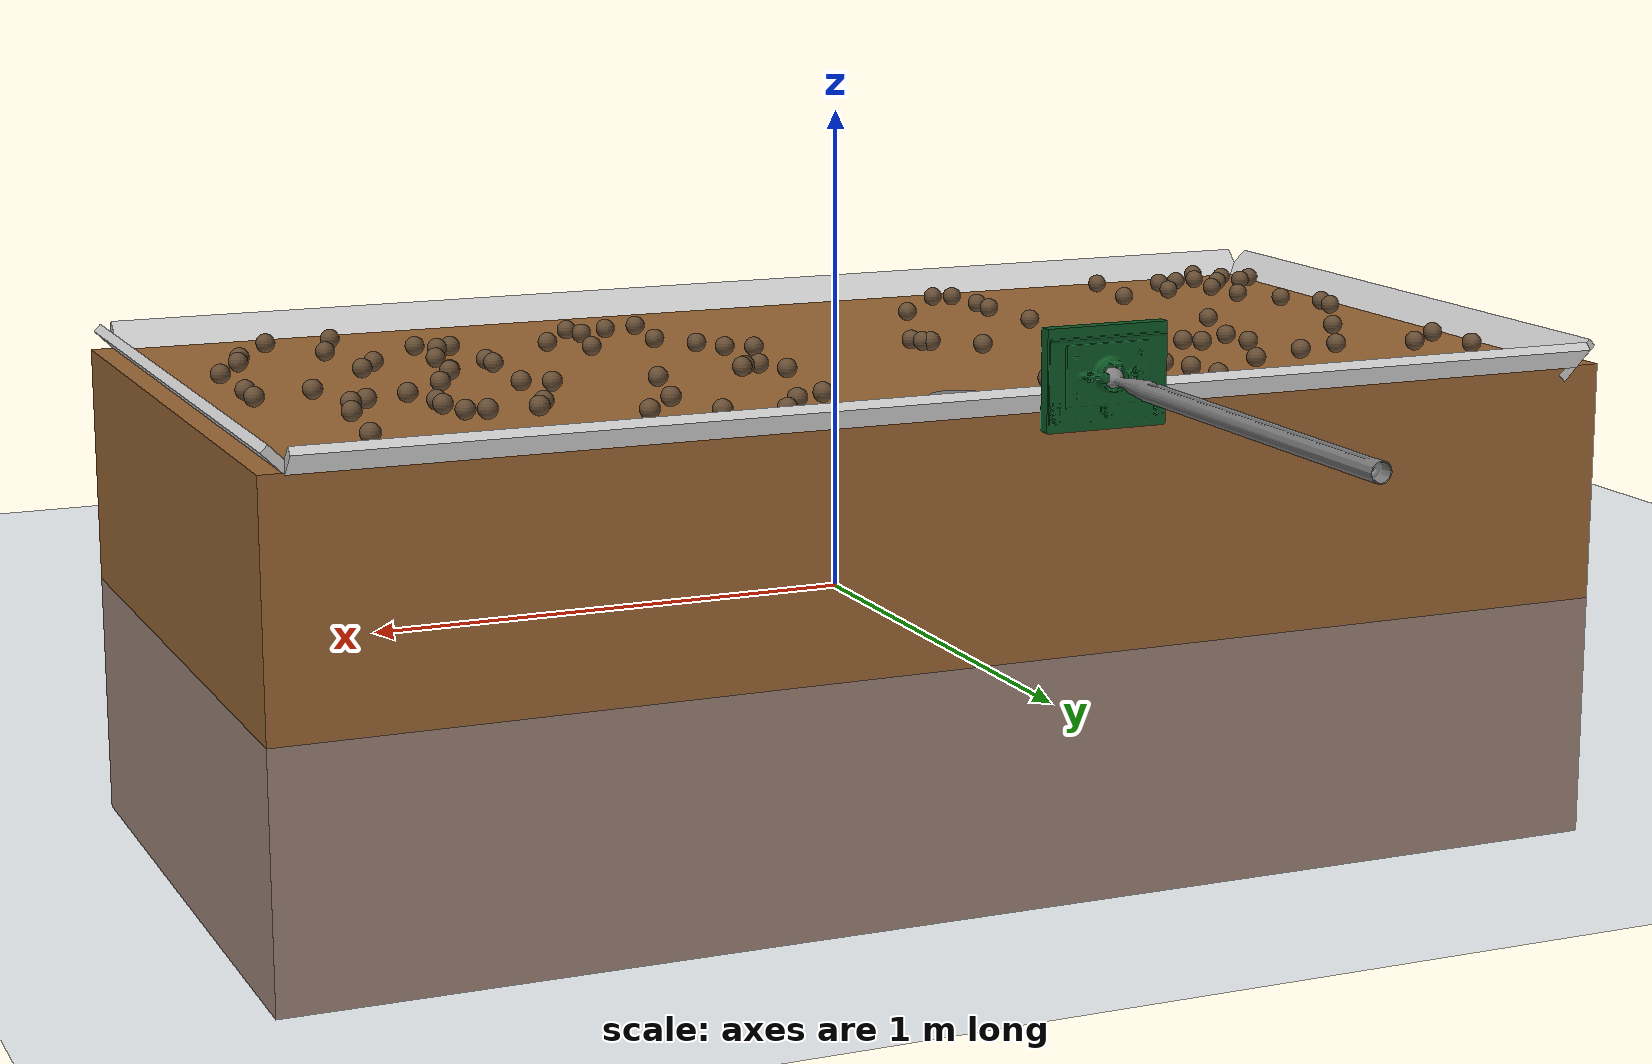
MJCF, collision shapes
<mujoco model="robot_cleaning_scene">
    <compiler angle="radian" meshdir="../assets" autolimits="true" />
    <option integrator="implicitfast" timestep="0.01" viscosity="0.01" />
    <include file="world_settings.xml"/>
    <include file="table.xml"/>
    <include file="ur5e_with_mop.xml"/>
    <include file="balls.xml"/>
</mujoco>

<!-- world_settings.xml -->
<mujoco>
  <compiler angle="radian" meshdir="assets" autolimits="true" />
  <option integrator="implicitfast" timestep="0.01" viscosity="0.01" />

  <asset>
    <texture name="skybox" type="skybox" builtin="gradient"
      rgb1="0.7 0.85 1" rgb2="0.2 0.3 0.5" width="512" height="512" />
    <texture name="ground_tex" type="2d" builtin="checker" width="512" height="512"
      rgb1="0.2 0.4 0.8" rgb2="0.9 0.9 1" mark="cross" random="0.01" />
    <material name="ground_mat" texture="ground_tex" texrepeat="4 4"
      rgba="1 1 1 1" specular="1" shininess="1" reflectance="0.5" />
  </asset>

  <visual>
    <map znear="0.01" zfar="200" fogstart="8" fogend="60" />
  </visual>

  <worldbody>
    <!-- Key light -->
    <light name="sun_key" directional="true" pos="0 0 5" dir="0 0 -1"
      diffuse="0.15 0.15 0.15" ambient="0.15 0.15 0.15" specular="0.15 0.15 0.15" castshadow="false" />
    <!-- Ground plane -->
    <geom name="ground" type="plane" size="10 10 0.1" material="ground_mat"
      solref="0.02 1.0" solimp="0.9 0.95 0.001" friction="0.9 0.1 0.05" />
  </worldbody>
</mujoco>

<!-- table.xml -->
<mujoco>
    <compiler meshdir="../assets"/>
  <asset>
    <mesh file="test.stl" scale="0.28 0.29 0.1" name="table" />
    <material name="table_material" rgba="0.6 0.4 0.2 1" />
  </asset>
  <worldbody>
    <body name="table" pos="0 0 0">
      <inertial mass="50" pos="0 0 0.05" diaginertia="10 10 5" />
      <!-- Collision geometry -->
      <geom name="table_collision" type="box" size="1.4 0.7 0.5" pos="0.0 0.0 -0.01"
        material="table_material" group="3" contype="1" conaffinity="1"
        solref="0.02 1.0" solimp="0.9 0.95 0.001" friction="0.7 0.1 0.05" />
      <!-- Visual geometry -->
      <geom name="table_visual" type="mesh" mesh="table" material="table_material" class="visual"
        pos="1.35 0.7 0" />
      <!-- Table edge wedges (collision only) -->
      <geom name="wedge_y_pos" type="box" size="1.35 0.05 0.01"
        pos="0.0 0.7 0.50" axisangle="1 0 0 0.7854"
        group="3" contype="1" conaffinity="1" friction="0.8 0.1 0.05" rgba="0.8 0.8 0.8 1" />
      <geom name="wedge_y_neg" type="box" size="1.35 0.05 0.01"
        pos="0.0 -0.7 0.50" axisangle="1 0 0 -0.7854"
        group="3" contype="1" conaffinity="1" friction="0.8 0.1 0.05" rgba="0.8 0.8 0.8 1" />
      <geom name="wedge_x_pos" type="box" size="0.05 0.7 0.01"
        pos="1.35 0.0 0.50" axisangle="0 1 0 -0.7854"
        group="3" contype="1" conaffinity="1" friction="0.8 0.1 0.05" rgba="0.8 0.8 0.8 1" />
      <geom name="wedge_x_neg" type="box" size="0.05 0.7 0.01"
        pos="-1.35 0.0 0.50" axisangle="0 1 0 0.7854"
        group="3" contype="1" conaffinity="1" friction="0.8 0.1 0.05" rgba="0.8 0.8 0.8 1" />
    </body>
  </worldbody>
</mujoco>

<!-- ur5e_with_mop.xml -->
<mujoco model="ur5e_with_mop">
  <compiler meshdir="../assets"/>
  <!-- ================= DEFAULT SETTINGS ================= -->
  <default>
    <default class="ur5e">
      <default class="visual">
        <geom type="mesh" contype="0" conaffinity="0" group="2" />
      </default>
      <default class="collision">
        <geom type="capsule" group="3" />
        <default class="eef_collision">
          <geom type="cylinder" />
        </default>
      </default>
      <joint axis="0 1 0" range="-6.28319 6.28319" />
      <default class="joint_limited">
        <joint range="-3.1415 3.1415" />
      </default>
      <default class="position">
        <position ctrlrange="-6.2831 6.2831" kp="500" kv="25" forcerange="-150 150" />
        <default class="position_limited">
          <position ctrlrange="-3.1415 3.1415" />
        </default>
        <default class="position_small">
          <position kp="500" kv="25" forcerange="-28 28" />
        </default>
      </default>
    </default>
  </default>
  <asset>
    <material name="black" rgba="0.033 0.033 0.033 1" />
    <material name="jointgray" rgba="0.278 0.278 0.278 1" />
    <material name="linkgray" rgba="0.82 0.82 0.82 1" />
    <material name="urblue" rgba="0.49 0.678 0.8 1" />
    <!-- Purple material for the mop -->
    <material name="mop_purple" rgba="0.18 0.05 0.35 1" specular="0.5" shininess="0.6" />
    <!-- Dark green material for the mop -->
    <material name="mop_dark_green" rgba="0.05 0.35 0.15 1" specular="0.4" shininess="0.5" />
    <!-- Robot meshes -->
    <mesh file="base_0.obj" />
    <mesh file="base_1.obj" />
    <mesh file="shoulder_0.obj" />
    <mesh file="shoulder_1.obj" />
    <mesh file="shoulder_2.obj" />
    <mesh file="upperarm_0.obj" />
    <mesh file="upperarm_1.obj" />
    <mesh file="upperarm_2.obj" />
    <mesh file="upperarm_3.obj" />
    <mesh file="forearm_0.obj" />
    <mesh file="forearm_1.obj" />
    <mesh file="forearm_2.obj" />
    <mesh file="forearm_3.obj" />
    <mesh file="wrist1_0.obj" />
    <mesh file="wrist1_1.obj" />
    <mesh file="wrist1_2.obj" />
    <mesh file="wrist2_0.obj" />
    <mesh file="wrist2_1.obj" />
    <mesh file="wrist2_2.obj" />
    <mesh file="wrist3.obj" />
    <!-- Mop meshes -->
    <mesh name="base_mesh" file="mop_base.obj" scale="0.002 0.002 0.002" />
    <mesh name="handle_mesh" file="mop_handle.obj" scale="0.002 0.002 0.002" />
  </asset>

  <worldbody>
    <!-- UR5e Robot mounted ON the table surface -->
    <body name="base" pos="0.0 0.6 0.5" quat="1 0 0 1" childclass="ur5e">
      <inertial mass="4" pos="0 0 0" diaginertia="0.0044 0.0044 0.0072" />
      <geom mesh="base_0" material="black" class="visual" />
      <geom mesh="base_1" material="jointgray" class="visual" />
      <geom name="base_collision" type="cylinder" size="0.06 0.02" pos="0 0 -0.01" />
      <body name="shoulder_link" pos="0 0 0.163">
        <inertial mass="3.7" pos="0 0 0" diaginertia="0.0102 0.0102 0.0066" />
        <joint name="shoulder_pan" axis="0 0 1" />
        <geom mesh="shoulder_0" material="urblue" class="visual" />
        <geom mesh="shoulder_1" material="black" class="visual" />
        <geom mesh="shoulder_2" material="jointgray" class="visual" />

        <body name="upper_arm_link" pos="0 0.138 0" quat="1 0 1 0">
          <inertial mass="8.39" pos="0 0 0.2125" diaginertia="0.133 0.133 0.015" />
          <joint name="shoulder_lift" />
          <geom mesh="upperarm_0" material="linkgray" class="visual" />
          <geom mesh="upperarm_1" material="black" class="visual" />
          <geom mesh="upperarm_2" material="jointgray" class="visual" />
          <geom mesh="upperarm_3" material="urblue" class="visual" />

          <body name="forearm_link" pos="0 -0.131 0.425">
            <inertial mass="2.27" pos="0 0 0.196" diaginertia="0.031 0.031 0.004" />
            <joint name="elbow" class="joint_limited" />
            <geom mesh="forearm_0" material="urblue" class="visual" />
            <geom mesh="forearm_1" material="linkgray" class="visual" />
            <geom mesh="forearm_2" material="black" class="visual" />
            <geom mesh="forearm_3" material="jointgray" class="visual" />

            <body name="wrist_1_link" pos="0 0 0.392" quat="1 0 1 0">
              <inertial mass="1.219" pos="0 0.127 0" diaginertia="0.0025 0.0025 0.0021" />
              <joint name="wrist_1" />
              <geom mesh="wrist1_0" material="black" class="visual" />
              <geom mesh="wrist1_1" material="urblue" class="visual" />
              <geom mesh="wrist1_2" material="jointgray" class="visual" />

              <body name="wrist_2_link" pos="0 0.127 0">
                <inertial mass="1.219" pos="0 0 0.1" diaginertia="0.0025 0.0025 0.0021" />
                <joint name="wrist_2" axis="0 0 1" />
                <geom mesh="wrist2_0" material="black" class="visual" />
                <geom mesh="wrist2_1" material="urblue" class="visual" />
                <geom mesh="wrist2_2" material="jointgray" class="visual" />

                <body name="wrist_3_link" pos="0 0 0.1">
                  <inertial mass="0.188" pos="0 0.077 0" diaginertia="0.00013 0.0001 0.0001" />
                  <joint name="wrist_3" />
                  <geom mesh="wrist3" material="linkgray" class="visual" />

                  <!-- Mop tool attachment -->
                  <body name="mop_mount" pos="0 0.08 0" quat="1 0 0 1">

                    <body name="mop_tool" pos="0 -0.6 0">
                      <inertial mass="0.5" pos="0 0 0" diaginertia="0.01 0.01 0.01" />
                      <geom type="mesh" mesh="handle_mesh" density="500" friction="0.8 0.1 0.1" />

                      <body name="mop_head">
                        <joint name="mop_socket" type="ball" damping="0.5" limited="false" />
                        <site name="ee_site" pos="0 -0.02 0.0" size="0.01" rgba="1 0 0 1" group="4" />
                        <inertial mass="0.2" pos="0 -0.05 -0.1" diaginertia="0.005 0.005 0.005" />
                        <geom type="mesh" mesh="base_mesh" density="500" friction="0.8 0.1 0.1"
                          pos="0 -0.05 -0.1" material="mop_dark_green" />
                      </body>  <!--
                      mop_head -->
                    </body>    <!--
                    mop_tool -->
                  </body>      <!--
                  mop_mount -->
                </body>        <!--
                wrist_3_link -->
              </body>          <!--
              wrist_2_link -->
            </body>            <!--
            wrist_1_link -->
          </body>              <!--
          forearm_link -->
        </body>                <!--
        upper_arm_link -->
      </body>                  <!--
      shoulder_link -->
    </body>                   <!--
    base -->
  </worldbody>
  <actuator>
    <position class="position" name="shoulder_pan_act" joint="shoulder_pan" />
    <position class="position" name="shoulder_lift_act" joint="shoulder_lift" />
    <position class="position_limited" name="elbow_act" joint="elbow" />
    <position class="position_small" name="wrist_1_act" joint="wrist_1" />
    <position class="position_small" name="wrist_2_act" joint="wrist_2" />
    <position class="position_small" name="wrist_3_act" joint="wrist_3" />
  </actuator>
</mujoco>

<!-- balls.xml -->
<mujoco>
   <asset>
      <material name="dust_material" rgba="0.4 0.3 0.2 0.8" />
  </asset>
  <worldbody>
    <body name="ball_1" pos="-0.5133 -0.52 0.51">
      <freejoint/>
      <inertial mass="0.53" diaginertia="8.48e-05 8.48e-05 8.48e-05" pos="0 0 0"/>
      <geom type="sphere" size="0.02" material="dust_material"/>
    </body>
    <body name="ball_2" pos="0.7296 -0.3315 0.51">
      <freejoint/>
      <inertial mass="0.53" diaginertia="8.48e-05 8.48e-05 8.48e-05" pos="0 0 0"/>
      <geom type="sphere" size="0.02" material="dust_material"/>
    </body>
    <body name="ball_3" pos="-0.8236 0.1822 0.51">
      <freejoint/>
      <inertial mass="0.53" diaginertia="8.480000000000001e-05 8.480000000000001e-05 8.480000000000001e-05" pos="0 0 0"/>
      <geom type="sphere" size="0.02" material="dust_material"/>
   </body>
   <body name="ball_4" pos="0.4596 -0.2143 0.51">
      <freejoint/>
      <inertial mass="0.53" diaginertia="8.480000000000001e-05 8.480000000000001e-05 8.480000000000001e-05" pos="0 0 0"/>
      <geom type="sphere" size="0.02" material="dust_material"/>
   </body>
   <body name="ball_5" pos="0.152 -0.0756 0.51">
      <freejoint/>
      <inertial mass="0.53" diaginertia="8.480000000000001e-05 8.480000000000001e-05 8.480000000000001e-05" pos="0 0 0"/>
      <geom type="sphere" size="0.02" material="dust_material"/>
   </body>
   <body name="ball_6" pos="0.2438 -0.1683 0.51">
      <freejoint/>
      <inertial mass="0.53" diaginertia="8.480000000000001e-05 8.480000000000001e-05 8.480000000000001e-05" pos="0 0 0"/>
      <geom type="sphere" size="0.02" material="dust_material"/>
   </body>
   <body name="ball_7" pos="0.2067 -0.102 0.51">
      <freejoint/>
      <inertial mass="0.53" diaginertia="8.480000000000001e-05 8.480000000000001e-05 8.480000000000001e-05" pos="0 0 0"/>
      <geom type="sphere" size="0.02" material="dust_material"/>
   </body>
   <body name="ball_8" pos="-0.5191 -0.3404 0.51">
      <freejoint/>
      <inertial mass="0.53" diaginertia="8.480000000000001e-05 8.480000000000001e-05 8.480000000000001e-05" pos="0 0 0"/>
      <geom type="sphere" size="0.02" material="dust_material"/>
   </body>
   <body name="ball_9" pos="0.8695 0.056 0.51">
      <freejoint/>
      <inertial mass="0.53" diaginertia="8.480000000000001e-05 8.480000000000001e-05 8.480000000000001e-05" pos="0 0 0"/>
      <geom type="sphere" size="0.02" material="dust_material"/>
   </body>
   <body name="ball_10" pos="-0.8261 0.2712 0.51">
      <freejoint/>
      <inertial mass="0.53" diaginertia="8.480000000000001e-05 8.480000000000001e-05 8.480000000000001e-05" pos="0 0 0"/>
      <geom type="sphere" size="0.02" material="dust_material"/>
   </body>
   <body name="ball_11" pos="0.4689 0.5483 0.51">
      <freejoint/>
      <inertial mass="0.53" diaginertia="8.480000000000001e-05 8.480000000000001e-05 8.480000000000001e-05" pos="0 0 0"/>
      <geom type="sphere" size="0.02" material="dust_material"/>
   </body>
   <body name="ball_12" pos="-1.2387 -0.4799 0.51">
      <freejoint/>
      <inertial mass="0.53" diaginertia="8.480000000000001e-05 8.480000000000001e-05 8.480000000000001e-05" pos="0 0 0"/>
      <geom type="sphere" size="0.02" material="dust_material"/>
   </body>
   <body name="ball_13" pos="0.813 -0.0625 0.51">
      <freejoint/>
      <inertial mass="0.53" diaginertia="8.480000000000001e-05 8.480000000000001e-05 8.480000000000001e-05" pos="0 0 0"/>
      <geom type="sphere" size="0.02" material="dust_material"/>
   </body>
   <body name="ball_14" pos="0.7222 0.1131 0.51">
      <freejoint/>
      <inertial mass="0.53" diaginertia="8.480000000000001e-05 8.480000000000001e-05 8.480000000000001e-05" pos="0 0 0"/>
      <geom type="sphere" size="0.02" material="dust_material"/>
   </body>
   <body name="ball_15" pos="0.816 -0.0556 0.51">
      <freejoint/>
      <inertial mass="0.53" diaginertia="8.480000000000001e-05 8.480000000000001e-05 8.480000000000001e-05" pos="0 0 0"/>
      <geom type="sphere" size="0.02" material="dust_material"/>
   </body>
   <body name="ball_16" pos="-0.3298 -0.362 0.51">
      <freejoint/>
      <inertial mass="0.53" diaginertia="8.480000000000001e-05 8.480000000000001e-05 8.480000000000001e-05" pos="0 0 0"/>
      <geom type="sphere" size="0.02" material="dust_material"/>
   </body>
   <body name="ball_17" pos="-0.1847 -0.025 0.51">
      <freejoint/>
      <inertial mass="0.53" diaginertia="8.480000000000001e-05 8.480000000000001e-05 8.480000000000001e-05" pos="0 0 0"/>
      <geom type="sphere" size="0.02" material="dust_material"/>
   </body>
   <body name="ball_18" pos="0.9268 -0.2158 0.51">
      <freejoint/>
      <inertial mass="0.53" diaginertia="8.480000000000001e-05 8.480000000000001e-05 8.480000000000001e-05" pos="0 0 0"/>
      <geom type="sphere" size="0.02" material="dust_material"/>
   </body>
   <body name="ball_19" pos="-1.2776 -0.5062 0.51">
      <freejoint/>
      <inertial mass="0.53" diaginertia="8.480000000000001e-05 8.480000000000001e-05 8.480000000000001e-05" pos="0 0 0"/>
      <geom type="sphere" size="0.02" material="dust_material"/>
   </body>
   <body name="ball_20" pos="-0.7388 0.4535 0.51">
      <freejoint/>
      <inertial mass="0.53" diaginertia="8.480000000000001e-05 8.480000000000001e-05 8.480000000000001e-05" pos="0 0 0"/>
      <geom type="sphere" size="0.02" material="dust_material"/>
   </body>
   <body name="ball_21" pos="0.7086 -0.1051 0.51">
      <freejoint/>
      <inertial mass="0.53" diaginertia="8.480000000000001e-05 8.480000000000001e-05 8.480000000000001e-05" pos="0 0 0"/>
      <geom type="sphere" size="0.02" material="dust_material"/>
   </body>
   <body name="ball_22" pos="0.7723 0.375 0.51">
      <freejoint/>
      <inertial mass="0.53" diaginertia="8.480000000000001e-05 8.480000000000001e-05 8.480000000000001e-05" pos="0 0 0"/>
      <geom type="sphere" size="0.02" material="dust_material"/>
   </body>
   <body name="ball_23" pos="-0.2397 0.4991 0.51">
      <freejoint/>
      <inertial mass="0.53" diaginertia="8.480000000000001e-05 8.480000000000001e-05 8.480000000000001e-05" pos="0 0 0"/>
      <geom type="sphere" size="0.02" material="dust_material"/>
   </body>
   <body name="ball_24" pos="0.9622 0.1456 0.51">
      <freejoint/>
      <inertial mass="0.53" diaginertia="8.480000000000001e-05 8.480000000000001e-05 8.480000000000001e-05" pos="0 0 0"/>
      <geom type="sphere" size="0.02" material="dust_material"/>
   </body>
   <body name="ball_25" pos="-1.1435 -0.5267 0.51">
      <freejoint/>
      <inertial mass="0.53" diaginertia="8.480000000000001e-05 8.480000000000001e-05 8.480000000000001e-05" pos="0 0 0"/>
      <geom type="sphere" size="0.02" material="dust_material"/>
   </body>
   <body name="ball_26" pos="1.1215 0.0387 0.51">
      <freejoint/>
      <inertial mass="0.53" diaginertia="8.480000000000001e-05 8.480000000000001e-05 8.480000000000001e-05" pos="0 0 0"/>
      <geom type="sphere" size="0.02" material="dust_material"/>
   </body>
   <body name="ball_27" pos="-0.6188 0.2355 0.51">
      <freejoint/>
      <inertial mass="0.53" diaginertia="8.480000000000001e-05 8.480000000000001e-05 8.480000000000001e-05" pos="0 0 0"/>
      <geom type="sphere" size="0.02" material="dust_material"/>
   </body>
   <body name="ball_28" pos="1.2455 -0.198 0.51">
      <freejoint/>
      <inertial mass="0.53" diaginertia="8.480000000000001e-05 8.480000000000001e-05 8.480000000000001e-05" pos="0 0 0"/>
      <geom type="sphere" size="0.02" material="dust_material"/>
   </body>
   <body name="ball_29" pos="0.6668 0.1406 0.51">
      <freejoint/>
      <inertial mass="0.53" diaginertia="8.480000000000001e-05 8.480000000000001e-05 8.480000000000001e-05" pos="0 0 0"/>
      <geom type="sphere" size="0.02" material="dust_material"/>
   </body>
   <body name="ball_30" pos="0.7091 -0.1517 0.51">
      <freejoint/>
      <inertial mass="0.53" diaginertia="8.480000000000001e-05 8.480000000000001e-05 8.480000000000001e-05" pos="0 0 0"/>
      <geom type="sphere" size="0.02" material="dust_material"/>
   </body>
   <body name="ball_31" pos="1.165 -0.3689 0.51">
      <freejoint/>
      <inertial mass="0.53" diaginertia="8.480000000000001e-05 8.480000000000001e-05 8.480000000000001e-05" pos="0 0 0"/>
      <geom type="sphere" size="0.02" material="dust_material"/>
   </body>
   <body name="ball_32" pos="-1.1219 -0.4064 0.51">
      <freejoint/>
      <inertial mass="0.53" diaginertia="8.480000000000001e-05 8.480000000000001e-05 8.480000000000001e-05" pos="0 0 0"/>
      <geom type="sphere" size="0.02" material="dust_material"/>
   </body>
   <body name="ball_33" pos="0.226 0.4603 0.51">
      <freejoint/>
      <inertial mass="0.53" diaginertia="8.480000000000001e-05 8.480000000000001e-05 8.480000000000001e-05" pos="0 0 0"/>
      <geom type="sphere" size="0.02" material="dust_material"/>
   </body>
   <body name="ball_34" pos="0.935 -0.5185 0.51">
      <freejoint/>
      <inertial mass="0.53" diaginertia="8.480000000000001e-05 8.480000000000001e-05 8.480000000000001e-05" pos="0 0 0"/>
      <geom type="sphere" size="0.02" material="dust_material"/>
   </body>
   <body name="ball_35" pos="0.7971 -0.3613 0.51">
      <freejoint/>
      <inertial mass="0.53" diaginertia="8.480000000000001e-05 8.480000000000001e-05 8.480000000000001e-05" pos="0 0 0"/>
      <geom type="sphere" size="0.02" material="dust_material"/>
   </body>
   <body name="ball_36" pos="0.1872 0.188 0.51">
      <freejoint/>
      <inertial mass="0.53" diaginertia="8.480000000000001e-05 8.480000000000001e-05 8.480000000000001e-05" pos="0 0 0"/>
      <geom type="sphere" size="0.02" material="dust_material"/>
   </body>
   <body name="ball_37" pos="-0.8746 0.4021 0.51">
      <freejoint/>
      <inertial mass="0.53" diaginertia="8.480000000000001e-05 8.480000000000001e-05 8.480000000000001e-05" pos="0 0 0"/>
      <geom type="sphere" size="0.02" material="dust_material"/>
   </body>
   <body name="ball_38" pos="0.7982 -0.2086 0.51">
      <freejoint/>
      <inertial mass="0.53" diaginertia="8.480000000000001e-05 8.480000000000001e-05 8.480000000000001e-05" pos="0 0 0"/>
      <geom type="sphere" size="0.02" material="dust_material"/>
   </body>
   <body name="ball_39" pos="-0.5657 0.4921 0.51">
      <freejoint/>
      <inertial mass="0.53" diaginertia="8.480000000000001e-05 8.480000000000001e-05 8.480000000000001e-05" pos="0 0 0"/>
      <geom type="sphere" size="0.02" material="dust_material"/>
   </body>
   <body name="ball_40" pos="-1.1917 -0.2142 0.51">
      <freejoint/>
      <inertial mass="0.53" diaginertia="8.480000000000001e-05 8.480000000000001e-05 8.480000000000001e-05" pos="0 0 0"/>
      <geom type="sphere" size="0.02" material="dust_material"/>
   </body>
   <body name="ball_41" pos="-0.8987 -0.0272 0.51">
      <freejoint/>
      <inertial mass="0.53" diaginertia="8.480000000000001e-05 8.480000000000001e-05 8.480000000000001e-05" pos="0 0 0"/>
      <geom type="sphere" size="0.02" material="dust_material"/>
   </body>
   <body name="ball_42" pos="-1.2496 -0.1352 0.51">
      <freejoint/>
      <inertial mass="0.53" diaginertia="8.480000000000001e-05 8.480000000000001e-05 8.480000000000001e-05" pos="0 0 0"/>
      <geom type="sphere" size="0.02" material="dust_material"/>
   </body>
   <body name="ball_43" pos="0.352 0.5842 0.51">
      <freejoint/>
      <inertial mass="0.53" diaginertia="8.480000000000001e-05 8.480000000000001e-05 8.480000000000001e-05" pos="0 0 0"/>
      <geom type="sphere" size="0.02" material="dust_material"/>
   </body>
   <body name="ball_44" pos="1.1809 -0.315 0.51">
      <freejoint/>
      <inertial mass="0.53" diaginertia="8.480000000000001e-05 8.480000000000001e-05 8.480000000000001e-05" pos="0 0 0"/>
      <geom type="sphere" size="0.02" material="dust_material"/>
   </body>
   <body name="ball_45" pos="0.9336 0.2428 0.51">
      <freejoint/>
      <inertial mass="0.53" diaginertia="8.480000000000001e-05 8.480000000000001e-05 8.480000000000001e-05" pos="0 0 0"/>
      <geom type="sphere" size="0.02" material="dust_material"/>
   </body>
   <body name="ball_46" pos="-1.1779 -0.4799 0.51">
      <freejoint/>
      <inertial mass="0.53" diaginertia="8.480000000000001e-05 8.480000000000001e-05 8.480000000000001e-05" pos="0 0 0"/>
      <geom type="sphere" size="0.02" material="dust_material"/>
   </body>
   <body name="ball_47" pos="0.9692 -0.1498 0.51">
      <freejoint/>
      <inertial mass="0.53" diaginertia="8.480000000000001e-05 8.480000000000001e-05 8.480000000000001e-05" pos="0 0 0"/>
      <geom type="sphere" size="0.02" material="dust_material"/>
   </body>
   <body name="ball_48" pos="-0.8722 -0.3656 0.51">
      <freejoint/>
      <inertial mass="0.53" diaginertia="8.480000000000001e-05 8.480000000000001e-05 8.480000000000001e-05" pos="0 0 0"/>
      <geom type="sphere" size="0.02" material="dust_material"/>
   </body>
   <body name="ball_49" pos="-1.1338 -0.3069 0.51">
      <freejoint/>
      <inertial mass="0.53" diaginertia="8.480000000000001e-05 8.480000000000001e-05 8.480000000000001e-05" pos="0 0 0"/>
      <geom type="sphere" size="0.02" material="dust_material"/>
   </body>
   <body name="ball_50" pos="0.7495 0.332 0.51">
      <freejoint/>
      <inertial mass="0.53" diaginertia="8.480000000000001e-05 8.480000000000001e-05 8.480000000000001e-05" pos="0 0 0"/>
      <geom type="sphere" size="0.02" material="dust_material"/>
   </body>
   <body name="ball_51" pos="-1.2433 0.4762 0.51">
      <freejoint/>
      <inertial mass="0.53" diaginertia="8.480000000000001e-05 8.480000000000001e-05 8.480000000000001e-05" pos="0 0 0"/>
      <geom type="sphere" size="0.02" material="dust_material"/>
   </body>
   <body name="ball_52" pos="0.8728 0.37 0.51">
      <freejoint/>
      <inertial mass="0.53" diaginertia="8.480000000000001e-05 8.480000000000001e-05 8.480000000000001e-05" pos="0 0 0"/>
      <geom type="sphere" size="0.02" material="dust_material"/>
   </body>
   <body name="ball_53" pos="1.1139 0.2892 0.51">
      <freejoint/>
      <inertial mass="0.53" diaginertia="8.480000000000001e-05 8.480000000000001e-05 8.480000000000001e-05" pos="0 0 0"/>
      <geom type="sphere" size="0.02" material="dust_material"/>
   </body>
   <body name="ball_54" pos="-0.299 0.0836 0.51">
      <freejoint/>
      <inertial mass="0.53" diaginertia="8.480000000000001e-05 8.480000000000001e-05 8.480000000000001e-05" pos="0 0 0"/>
      <geom type="sphere" size="0.02" material="dust_material"/>
   </body>
   <body name="ball_55" pos="0.5281 -0.2972 0.51">
      <freejoint/>
      <inertial mass="0.53" diaginertia="8.480000000000001e-05 8.480000000000001e-05 8.480000000000001e-05" pos="0 0 0"/>
      <geom type="sphere" size="0.02" material="dust_material"/>
   </body>
   <body name="ball_56" pos="-1.2423 0.3297 0.51">
      <freejoint/>
      <inertial mass="0.53" diaginertia="8.480000000000001e-05 8.480000000000001e-05 8.480000000000001e-05" pos="0 0 0"/>
      <geom type="sphere" size="0.02" material="dust_material"/>
   </body>
   <body name="ball_57" pos="-1.099 0.161 0.51">
      <freejoint/>
      <inertial mass="0.53" diaginertia="8.480000000000001e-05 8.480000000000001e-05 8.480000000000001e-05" pos="0 0 0"/>
      <geom type="sphere" size="0.02" material="dust_material"/>
   </body>
   <body name="ball_58" pos="0.2537 0.1255 0.51">
      <freejoint/>
      <inertial mass="0.53" diaginertia="8.480000000000001e-05 8.480000000000001e-05 8.480000000000001e-05" pos="0 0 0"/>
      <geom type="sphere" size="0.02" material="dust_material"/>
   </body>
   <body name="ball_59" pos="0.2192 0.1168 0.51">
      <freejoint/>
      <inertial mass="0.53" diaginertia="8.480000000000001e-05 8.480000000000001e-05 8.480000000000001e-05" pos="0 0 0"/>
      <geom type="sphere" size="0.02" material="dust_material"/>
   </body>
   <body name="ball_60" pos="-1.0115 -0.4116 0.51">
      <freejoint/>
      <inertial mass="0.53" diaginertia="8.480000000000001e-05 8.480000000000001e-05 8.480000000000001e-05" pos="0 0 0"/>
      <geom type="sphere" size="0.02" material="dust_material"/>
   </body>
   <body name="ball_61" pos="1.2454 0.0717 0.51">
      <freejoint/>
      <inertial mass="0.53" diaginertia="8.480000000000001e-05 8.480000000000001e-05 8.480000000000001e-05" pos="0 0 0"/>
      <geom type="sphere" size="0.02" material="dust_material"/>
   </body>
   <body name="ball_62" pos="-0.9043 -0.5586 0.51">
      <freejoint/>
      <inertial mass="0.53" diaginertia="8.480000000000001e-05 8.480000000000001e-05 8.480000000000001e-05" pos="0 0 0"/>
      <geom type="sphere" size="0.02" material="dust_material"/>
   </body>
   <body name="ball_63" pos="-0.5318 -0.1629 0.51">
      <freejoint/>
      <inertial mass="0.53" diaginertia="8.480000000000001e-05 8.480000000000001e-05 8.480000000000001e-05" pos="0 0 0"/>
      <geom type="sphere" size="0.02" material="dust_material"/>
   </body>
   <body name="ball_64" pos="-1.146 0.4098 0.51">
      <freejoint/>
      <inertial mass="0.53" diaginertia="8.480000000000001e-05 8.480000000000001e-05 8.480000000000001e-05" pos="0 0 0"/>
      <geom type="sphere" size="0.02" material="dust_material"/>
   </body>
   <body name="ball_65" pos="0.3067 -0.2507 0.51">
      <freejoint/>
      <inertial mass="0.53" diaginertia="8.480000000000001e-05 8.480000000000001e-05 8.480000000000001e-05" pos="0 0 0"/>
      <geom type="sphere" size="0.02" material="dust_material"/>
   </body>
   <body name="ball_66" pos="0.4401 -0.4311 0.51">
      <freejoint/>
      <inertial mass="0.53" diaginertia="8.480000000000001e-05 8.480000000000001e-05 8.480000000000001e-05" pos="0 0 0"/>
      <geom type="sphere" size="0.02" material="dust_material"/>
   </body>
   <body name="ball_67" pos="1.141 0.5105 0.51">
      <freejoint/>
      <inertial mass="0.53" diaginertia="8.480000000000001e-05 8.480000000000001e-05 8.480000000000001e-05" pos="0 0 0"/>
      <geom type="sphere" size="0.02" material="dust_material"/>
   </body>
   <body name="ball_68" pos="-1.0905 -0.5193 0.51">
      <freejoint/>
      <inertial mass="0.53" diaginertia="8.480000000000001e-05 8.480000000000001e-05 8.480000000000001e-05" pos="0 0 0"/>
      <geom type="sphere" size="0.02" material="dust_material"/>
   </body>
   <body name="ball_69" pos="0.9853 -0.3705 0.51">
      <freejoint/>
      <inertial mass="0.53" diaginertia="8.480000000000001e-05 8.480000000000001e-05 8.480000000000001e-05" pos="0 0 0"/>
      <geom type="sphere" size="0.02" material="dust_material"/>
   </body>
   <body name="ball_70" pos="-0.5785 0.58 0.51">
      <freejoint/>
      <inertial mass="0.53" diaginertia="8.480000000000001e-05 8.480000000000001e-05 8.480000000000001e-05" pos="0 0 0"/>
      <geom type="sphere" size="0.02" material="dust_material"/>
   </body>
   <body name="ball_71" pos="0.9347 0.2853 0.51">
      <freejoint/>
      <inertial mass="0.53" diaginertia="8.480000000000001e-05 8.480000000000001e-05 8.480000000000001e-05" pos="0 0 0"/>
      <geom type="sphere" size="0.02" material="dust_material"/>
   </body>
   <body name="ball_72" pos="-0.5226 -0.4091 0.51">
      <freejoint/>
      <inertial mass="0.53" diaginertia="8.480000000000001e-05 8.480000000000001e-05 8.480000000000001e-05" pos="0 0 0"/>
      <geom type="sphere" size="0.02" material="dust_material"/>
   </body>
   <body name="ball_73" pos="-0.5383 0.4284 0.51">
      <freejoint/>
      <inertial mass="0.53" diaginertia="8.480000000000001e-05 8.480000000000001e-05 8.480000000000001e-05" pos="0 0 0"/>
      <geom type="sphere" size="0.02" material="dust_material"/>
   </body>
   <body name="ball_74" pos="-1.0404 -0.5099 0.51">
      <freejoint/>
      <inertial mass="0.53" diaginertia="8.480000000000001e-05 8.480000000000001e-05 8.480000000000001e-05" pos="0 0 0"/>
      <geom type="sphere" size="0.02" material="dust_material"/>
   </body>
   <body name="ball_75" pos="-0.5638 0.1599 0.51">
      <freejoint/>
      <inertial mass="0.53" diaginertia="8.480000000000001e-05 8.480000000000001e-05 8.480000000000001e-05" pos="0 0 0"/>
      <geom type="sphere" size="0.02" material="dust_material"/>
   </body>
   <body name="ball_76" pos="1.0896 0.1973 0.51">
      <freejoint/>
      <inertial mass="0.53" diaginertia="8.480000000000001e-05 8.480000000000001e-05 8.480000000000001e-05" pos="0 0 0"/>
      <geom type="sphere" size="0.02" material="dust_material"/>
   </body>
   <body name="ball_77" pos="0.4583 0.1749 0.51">
      <freejoint/>
      <inertial mass="0.53" diaginertia="8.480000000000001e-05 8.480000000000001e-05 8.480000000000001e-05" pos="0 0 0"/>
      <geom type="sphere" size="0.02" material="dust_material"/>
   </body>
   <body name="ball_78" pos="0.761 -0.3208 0.51">
      <freejoint/>
      <inertial mass="0.53" diaginertia="8.480000000000001e-05 8.480000000000001e-05 8.480000000000001e-05" pos="0 0 0"/>
      <geom type="sphere" size="0.02" material="dust_material"/>
   </body>
   <body name="ball_79" pos="1.0526 0.1739 0.51">
      <freejoint/>
      <inertial mass="0.53" diaginertia="8.480000000000001e-05 8.480000000000001e-05 8.480000000000001e-05" pos="0 0 0"/>
      <geom type="sphere" size="0.02" material="dust_material"/>
   </body>
   <body name="ball_80" pos="1.2437 -0.0054 0.51">
      <freejoint/>
      <inertial mass="0.53" diaginertia="8.480000000000001e-05 8.480000000000001e-05 8.480000000000001e-05" pos="0 0 0"/>
      <geom type="sphere" size="0.02" material="dust_material"/>
   </body>
   <body name="ball_81" pos="0.511 0.3855 0.51">
      <freejoint/>
      <inertial mass="0.53" diaginertia="8.480000000000001e-05 8.480000000000001e-05 8.480000000000001e-05" pos="0 0 0"/>
      <geom type="sphere" size="0.02" material="dust_material"/>
   </body>
   <body name="ball_82" pos="-0.736 0.2346 0.51">
      <freejoint/>
      <inertial mass="0.53" diaginertia="8.480000000000001e-05 8.480000000000001e-05 8.480000000000001e-05" pos="0 0 0"/>
      <geom type="sphere" size="0.02" material="dust_material"/>
   </body>
   <body name="ball_83" pos="-1.2373 -0.0765 0.51">
      <freejoint/>
      <inertial mass="0.53" diaginertia="8.480000000000001e-05 8.480000000000001e-05 8.480000000000001e-05" pos="0 0 0"/>
      <geom type="sphere" size="0.02" material="dust_material"/>
   </body>
   <body name="ball_84" pos="0.2949 0.4965 0.51">
      <freejoint/>
      <inertial mass="0.53" diaginertia="8.480000000000001e-05 8.480000000000001e-05 8.480000000000001e-05" pos="0 0 0"/>
      <geom type="sphere" size="0.02" material="dust_material"/>
   </body>
   <body name="ball_85" pos="-0.3211 0.4232 0.51">
      <freejoint/>
      <inertial mass="0.53" diaginertia="8.480000000000001e-05 8.480000000000001e-05 8.480000000000001e-05" pos="0 0 0"/>
      <geom type="sphere" size="0.02" material="dust_material"/>
   </body>
   <body name="ball_86" pos="-1.2201 -0.5353 0.51">
      <freejoint/>
      <inertial mass="0.53" diaginertia="8.480000000000001e-05 8.480000000000001e-05 8.480000000000001e-05" pos="0 0 0"/>
      <geom type="sphere" size="0.02" material="dust_material"/>
   </body>
   <body name="ball_87" pos="0.2634 0.1362 0.51">
      <freejoint/>
      <inertial mass="0.53" diaginertia="8.480000000000001e-05 8.480000000000001e-05 8.480000000000001e-05" pos="0 0 0"/>
      <geom type="sphere" size="0.02" material="dust_material"/>
   </body>
   <body name="ball_88" pos="-0.2807 0.4685 0.51">
      <freejoint/>
      <inertial mass="0.53" diaginertia="8.480000000000001e-05 8.480000000000001e-05 8.480000000000001e-05" pos="0 0 0"/>
      <geom type="sphere" size="0.02" material="dust_material"/>
   </body>
   <body name="ball_89" pos="0.2857 -0.4254 0.51">
      <freejoint/>
      <inertial mass="0.53" diaginertia="8.480000000000001e-05 8.480000000000001e-05 8.480000000000001e-05" pos="0 0 0"/>
      <geom type="sphere" size="0.02" material="dust_material"/>
   </body>
   <body name="ball_90" pos="1.0732 -0.5175 0.51">
      <freejoint/>
      <inertial mass="0.53" diaginertia="8.480000000000001e-05 8.480000000000001e-05 8.480000000000001e-05" pos="0 0 0"/>
      <geom type="sphere" size="0.02" material="dust_material"/>
   </body>
   <body name="ball_91" pos="0.5948 0.4944 0.51">
      <freejoint/>
      <inertial mass="0.53" diaginertia="8.480000000000001e-05 8.480000000000001e-05 8.480000000000001e-05" pos="0 0 0"/>
      <geom type="sphere" size="0.02" material="dust_material"/>
   </body>
   <body name="ball_92" pos="-0.7053 0.2079 0.51">
      <freejoint/>
      <inertial mass="0.53" diaginertia="8.480000000000001e-05 8.480000000000001e-05 8.480000000000001e-05" pos="0 0 0"/>
      <geom type="sphere" size="0.02" material="dust_material"/>
   </body>
   <body name="ball_93" pos="-0.4716 -0.5335 0.51">
      <freejoint/>
      <inertial mass="0.53" diaginertia="8.480000000000001e-05 8.480000000000001e-05 8.480000000000001e-05" pos="0 0 0"/>
      <geom type="sphere" size="0.02" material="dust_material"/>
   </body>
   <body name="ball_94" pos="-0.1977 0.0029 0.51">
      <freejoint/>
      <inertial mass="0.53" diaginertia="8.480000000000001e-05 8.480000000000001e-05 8.480000000000001e-05" pos="0 0 0"/>
      <geom type="sphere" size="0.02" material="dust_material"/>
   </body>
   <body name="ball_95" pos="0.4265 -0.3728 0.51">
      <freejoint/>
      <inertial mass="0.53" diaginertia="8.480000000000001e-05 8.480000000000001e-05 8.480000000000001e-05" pos="0 0 0"/>
      <geom type="sphere" size="0.02" material="dust_material"/>
   </body>
   <body name="ball_96" pos="0.9133 0.3582 0.51">
      <freejoint/>
      <inertial mass="0.53" diaginertia="8.480000000000001e-05 8.480000000000001e-05 8.480000000000001e-05" pos="0 0 0"/>
      <geom type="sphere" size="0.02" material="dust_material"/>
   </body>
   <body name="ball_97" pos="-1.1802 -0.5982 0.51">
      <freejoint/>
      <inertial mass="0.53" diaginertia="8.480000000000001e-05 8.480000000000001e-05 8.480000000000001e-05" pos="0 0 0"/>
      <geom type="sphere" size="0.02" material="dust_material"/>
   </body>
   <body name="ball_98" pos="-0.9785 0.3714 0.51">
      <freejoint/>
      <inertial mass="0.53" diaginertia="8.480000000000001e-05 8.480000000000001e-05 8.480000000000001e-05" pos="0 0 0"/>
      <geom type="sphere" size="0.02" material="dust_material"/>
   </body>
   <body name="ball_99" pos="0.3587 -0.4117 0.51">
      <freejoint/>
      <inertial mass="0.53" diaginertia="8.480000000000001e-05 8.480000000000001e-05 8.480000000000001e-05" pos="0 0 0"/>
      <geom type="sphere" size="0.02" material="dust_material"/>
   </body>
   <body name="ball_100" pos="-0.2126 0.0115 0.51">
      <freejoint/>
      <inertial mass="0.53" diaginertia="8.480000000000001e-05 8.480000000000001e-05 8.480000000000001e-05" pos="0 0 0"/>
      <geom type="sphere" size="0.02" material="dust_material"/>
   </body>
  </worldbody>
</mujoco>
